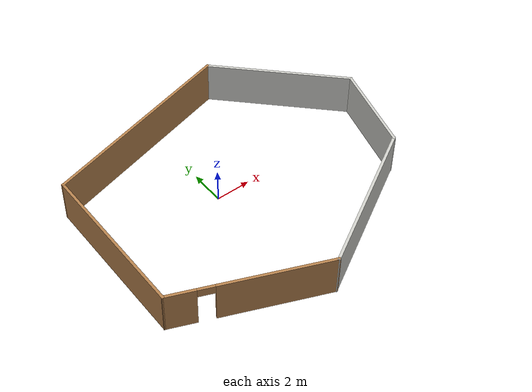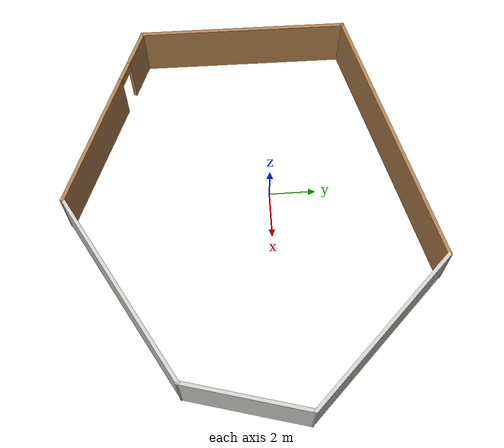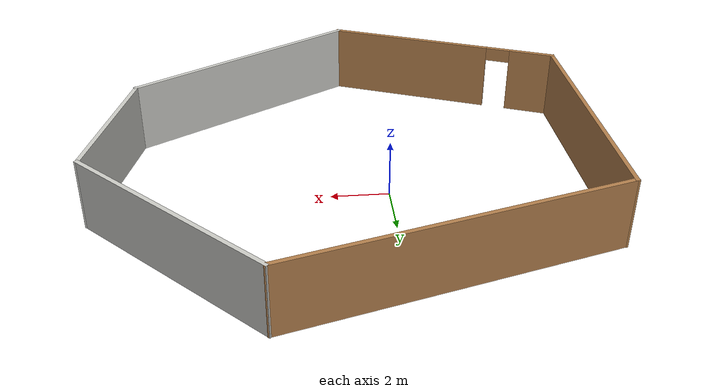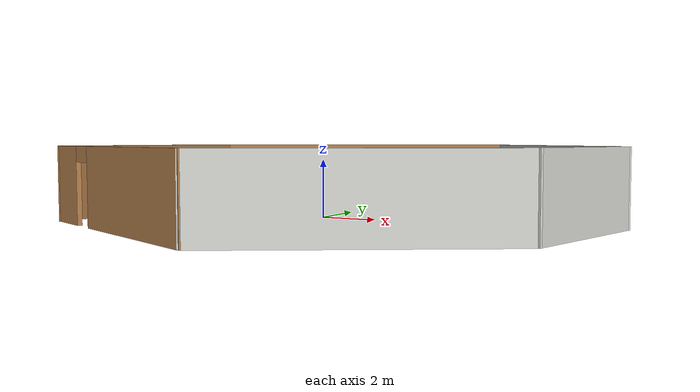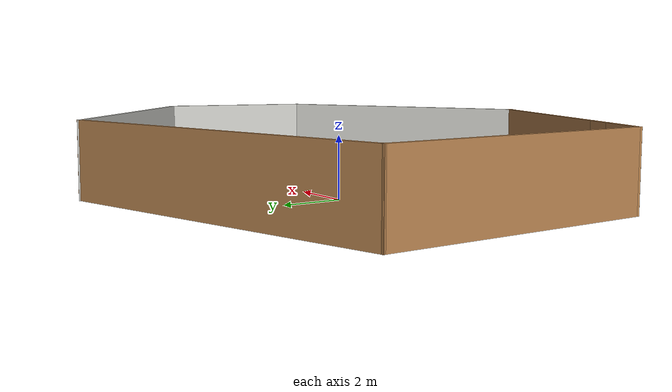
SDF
<?xml version='1.0'?>
<sdf version='1.7'>
  <model name='car1Model'>
    <pose>-901.261 -595.879 0 0 -0 0</pose>
    <link name='Wall_1'>
      <collision name='Wall_1_Collision'>
        <geometry>
          <box>
            <size>197.5 0.15 2.5</size>
          </box>
        </geometry>
        <pose>0 0 1.25 0 -0 0</pose>
      </collision>
      <visual name='Wall_1_Visual'>
        <pose>0 0 1.25 0 -0 0</pose>
        <geometry>
          <box>
            <size>197.5 0.15 2.5</size>
          </box>
        </geometry>
        <material>
          <script>
            <uri>file://media/materials/scripts/gazebo.material</uri>
            <name>Gazebo/Grey</name>
          </script>
          <ambient>1 1 1 1</ambient>
        </material>
        <meta>
          <layer>0</layer>
        </meta>
      </visual>
      <pose>-825.775 -553.234 0 0 -0 -0.523599</pose>
    </link>
    <link name='Wall_3'>
      <collision name='Wall_3_Collision'>
        <geometry>
          <box>
            <size>9 0.15 2.5</size>
          </box>
        </geometry>
        <pose>0 0 1.25 0 -0 0</pose>
      </collision>
      <visual name='Wall_3_Visual'>
        <pose>0 0 1.25 0 -0 0</pose>
        <geometry>
          <box>
            <size>9 0.15 2.5</size>
          </box>
        </geometry>
        <material>
          <script>
            <uri>file://media/materials/scripts/gazebo.material</uri>
            <name>Gazebo/Wood</name>
          </script>
          <ambient>1 1 1 1</ambient>
        </material>
        <meta>
          <layer>0</layer>
        </meta>
      </visual>
      <pose>894.294 595.14 0 0 -0 1.5708</pose>
    </link>
    <link name='Wall_4'>
      <collision name='Wall_4_Collision'>
        <geometry>
          <box>
            <size>11.75 0.15 2.5</size>
          </box>
        </geometry>
        <pose>0 0 1.25 0 -0 0</pose>
      </collision>
      <visual name='Wall_4_Visual'>
        <pose>0 0 1.25 0 -0 0</pose>
        <geometry>
          <box>
            <size>11.75 0.15 2.5</size>
          </box>
        </geometry>
        <material>
          <script>
            <uri>file://media/materials/scripts/gazebo.material</uri>
            <name>Gazebo/Wood</name>
          </script>
          <ambient>1 1 1 1</ambient>
        </material>
        <meta>
          <layer>0</layer>
        </meta>
      </visual>
      <pose>899.897 601.066 0 0 -0 0.261799</pose>
    </link>
    <link name='Wall_5'>
      <collision name='Wall_5_Collision'>
        <geometry>
          <box>
            <size>8.25 0.15 2.5</size>
          </box>
        </geometry>
        <pose>0 0 1.25 0 -0 0</pose>
      </collision>
      <visual name='Wall_5_Visual'>
        <pose>0 0 1.25 0 -0 0</pose>
        <geometry>
          <box>
            <size>8.25 0.15 2.5</size>
          </box>
        </geometry>
        <material>
          <script>
            <uri>file://media/materials/scripts/gazebo.material</uri>
            <name>Gazebo/CeilingTiled</name>
          </script>
          <ambient>1 1 1 1</ambient>
        </material>
        <meta>
          <layer>0</layer>
        </meta>
      </visual>
      <pose>908.363 599.704 0 0 -0 -0.785398</pose>
    </link>
    <link name='Wall_6'>
      <collision name='Wall_6_Collision'>
        <geometry>
          <box>
            <size>5.25 0.15 2.5</size>
          </box>
        </geometry>
        <pose>0 0 1.25 0 -0 0</pose>
      </collision>
      <visual name='Wall_6_Visual'>
        <pose>0 0 1.25 0 -0 0</pose>
        <geometry>
          <box>
            <size>5.25 0.15 2.5</size>
          </box>
        </geometry>
        <material>
          <script>
            <uri>file://media/materials/scripts/gazebo.material</uri>
            <name>Gazebo/CeilingTiled</name>
          </script>
          <ambient>0.996078 0.47451 0.0196078 1</ambient>
        </material>
        <meta>
          <layer>0</layer>
        </meta>
      </visual>
      <pose>910.567 594.377 0 0 -0 -1.8326</pose>
    </link>
    <link name='Wall_7'>
      <collision name='Wall_7_Collision'>
        <geometry>
          <box>
            <size>9 0.15 2.5</size>
          </box>
        </geometry>
        <pose>0 0 1.25 0 -0 0</pose>
      </collision>
      <visual name='Wall_7_Visual'>
        <pose>0 0 1.25 0 -0 0</pose>
        <geometry>
          <box>
            <size>9 0.15 2.5</size>
          </box>
        </geometry>
        <material>
          <script>
            <uri>file://media/materials/scripts/gazebo.material</uri>
            <name>Gazebo/CeilingTiled</name>
          </script>
          <ambient>1 1 1 1</ambient>
        </material>
        <meta>
          <layer>0</layer>
        </meta>
      </visual>
      <pose>906.075 589.701 0 0 -0 -2.61799</pose>
    </link>
    <link name='Wall_8'>
      <pose>898.268 589.102 0 0 -0 2.75597</pose>
      <visual name='Wall_8_Visual_0'>
        <pose>-1.30029 0 1.25 0 -0 0</pose>
        <geometry>
          <box>
            <size>6.12734 0.15 2.5</size>
          </box>
        </geometry>
        <material>
          <script>
            <uri>file://media/materials/scripts/gazebo.material</uri>
            <name>Gazebo/Wood</name>
          </script>
          <ambient>1 1 1 1</ambient>
        </material>
        <meta>
          <layer>0</layer>
        </meta>
      </visual>
      <collision name='Wall_8_Collision_0'>
        <geometry>
          <box>
            <size>6.12734 0.15 2.5</size>
          </box>
        </geometry>
        <pose>-1.30029 0 1.25 0 -0 0</pose>
      </collision>
      <visual name='Wall_8_Visual_1'>
        <pose>3.51367 0 1.25 0 -0 0</pose>
        <geometry>
          <box>
            <size>1.70059 0.15 2.5</size>
          </box>
        </geometry>
        <material>
          <script>
            <uri>file://media/materials/scripts/gazebo.material</uri>
            <name>Gazebo/Wood</name>
          </script>
          <ambient>1 1 1 1</ambient>
        </material>
        <meta>
          <layer>0</layer>
        </meta>
      </visual>
      <collision name='Wall_8_Collision_1'>
        <geometry>
          <box>
            <size>1.70059 0.15 2.5</size>
          </box>
        </geometry>
        <pose>3.51367 0 1.25 0 -0 0</pose>
      </collision>
      <visual name='Wall_8_Visual_2'>
        <pose>2.21338 0 2.25 0 -0 0</pose>
        <geometry>
          <box>
            <size>0.9 0.15 0.5</size>
          </box>
        </geometry>
        <material>
          <script>
            <uri>file://media/materials/scripts/gazebo.material</uri>
            <name>Gazebo/Wood</name>
          </script>
          <ambient>1 1 1 1</ambient>
        </material>
        <meta>
          <layer>0</layer>
        </meta>
      </visual>
      <collision name='Wall_8_Collision_2'>
        <geometry>
          <box>
            <size>0.9 0.15 0.5</size>
          </box>
        </geometry>
        <pose>2.21338 0 2.25 0 -0 0</pose>
      </collision>
    </link>
    <static>1</static>
  </model>
</sdf>
